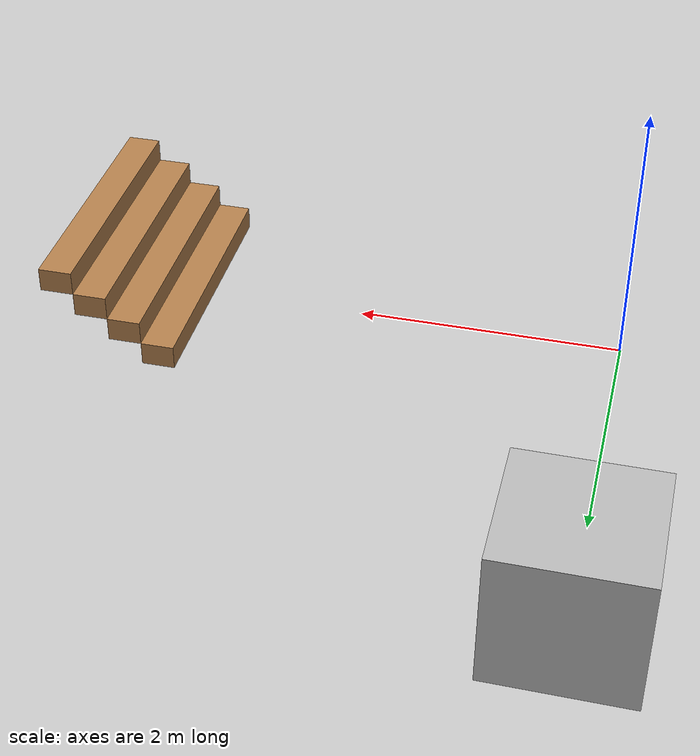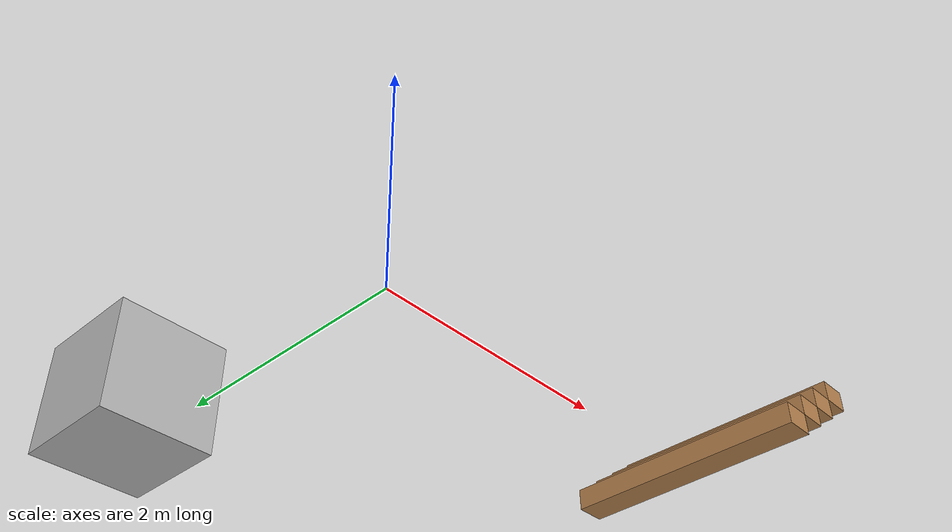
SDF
<?xml version='1.0'?>
<sdf version='1.6'>
  <model name='stairs'>
    <pose frame=''>3.7 0.009 0 0 -0 0</pose>
    <link name='Stairs_1'>
      <visual name='Stairs_1_Visual_0'>
        <pose frame=''>-0.375 -0 0.09 0 -0 1.5708</pose>
        <geometry>
          <box>
            <size>2 0.25 0.18</size>
          </box>
        </geometry>
        <material>
          <script>
            <uri>file://media/materials/scripts/gazebo.material</uri>
            <name>Gazebo/Wood</name>
          </script>
          <ambient>1 1 1 1</ambient>
        </material>
        <meta>
          <layer>0</layer>
        </meta>
      </visual>
      <collision name='Stairs_1_Collision_0'>
        <geometry>
          <box>
            <size>2 0.25 0.18</size>
          </box>
        </geometry>
        <pose frame=''>-0.375 -0 0.09 0 -0 1.5708</pose>
      </collision>
      <visual name='Stairs_1_Visual_1'>
        <pose frame=''>-0.125 -0 0.27 0 -0 1.5708</pose>
        <geometry>
          <box>
            <size>2 0.25 0.18</size>
          </box>
        </geometry>
        <material>
          <script>
            <uri>file://media/materials/scripts/gazebo.material</uri>
            <name>Gazebo/Wood</name>
          </script>
          <ambient>1 1 1 1</ambient>
        </material>
        <meta>
          <layer>0</layer>
        </meta>
      </visual>
      <collision name='Stairs_1_Collision_1'>
        <geometry>
          <box>
            <size>2 0.25 0.18</size>
          </box>
        </geometry>
        <pose frame=''>-0.125 -0 0.27 0 -0 1.5708</pose>
      </collision>
      <visual name='Stairs_1_Visual_2'>
        <pose frame=''>0.125 0 0.45 0 -0 1.5708</pose>
        <geometry>
          <box>
            <size>2 0.25 0.18</size>
          </box>
        </geometry>
        <material>
          <script>
            <uri>file://media/materials/scripts/gazebo.material</uri>
            <name>Gazebo/Wood</name>
          </script>
          <ambient>1 1 1 1</ambient>
        </material>
        <meta>
          <layer>0</layer>
        </meta>
      </visual>
      <collision name='Stairs_1_Collision_2'>
        <geometry>
          <box>
            <size>2 0.25 0.18</size>
          </box>
        </geometry>
        <pose frame=''>0.125 0 0.45 0 -0 1.5708</pose>
      </collision>
      <visual name='Stairs_1_Visual_3'>
        <pose frame=''>0.375 0 0.63 0 -0 1.5708</pose>
        <geometry>
          <box>
            <size>2 0.25 0.18</size>
          </box>
        </geometry>
        <material>
          <script>
            <uri>file://media/materials/scripts/gazebo.material</uri>
            <name>Gazebo/Wood</name>
          </script>
          <ambient>1 1 1 1</ambient>
        </material>
        <meta>
          <layer>0</layer>
        </meta>
      </visual>
      <collision name='Stairs_1_Collision_3'>
        <geometry>
          <box>
            <size>2 0.25 0.18</size>
          </box>
        </geometry>
        <pose frame=''>0.375 0 0.63 0 -0 1.5708</pose>
      </collision>
    </link>
    <static>1</static>
  </model>
  <model name="force_on_world_frame">
        <pose>0 3 0.5 0 0 1.57</pose>
          <link name="link">
            <collision name="collision">
              <geometry>
                <box>
                  <size>1 1 1</size>
                </box>
              </geometry>
            </collision>
            <visual name="visual">
              <geometry>
                <box>
                  <size>1 1 1</size>
                </box>
              </geometry>
            </visual>
          </link>
          <plugin name="gazebo_ros_force" filename="libgazebo_ros_force.so">
            <ros>
              <namespace>/demo/world</namespace>
             <remapping>gazebo_ros_force:=force_demo</remapping>
            </ros>
            <link_name>link</link_name>
            <force_frame>world</force_frame>
         </plugin>
      </model>
</sdf>
